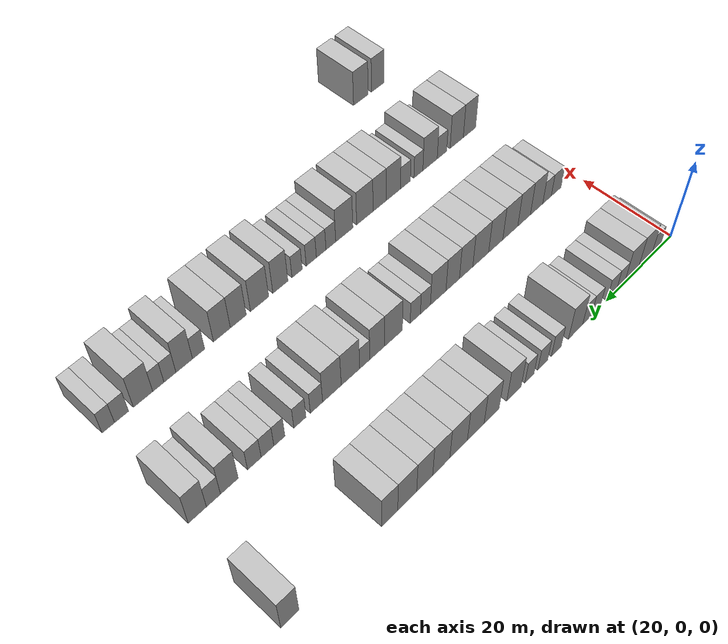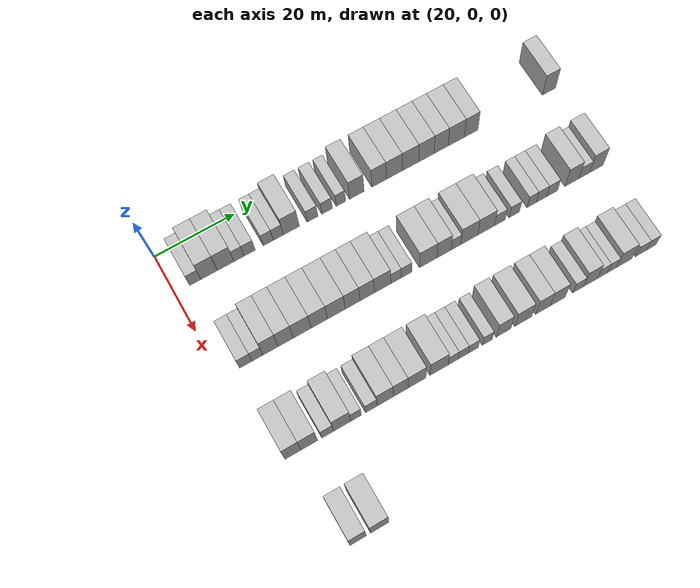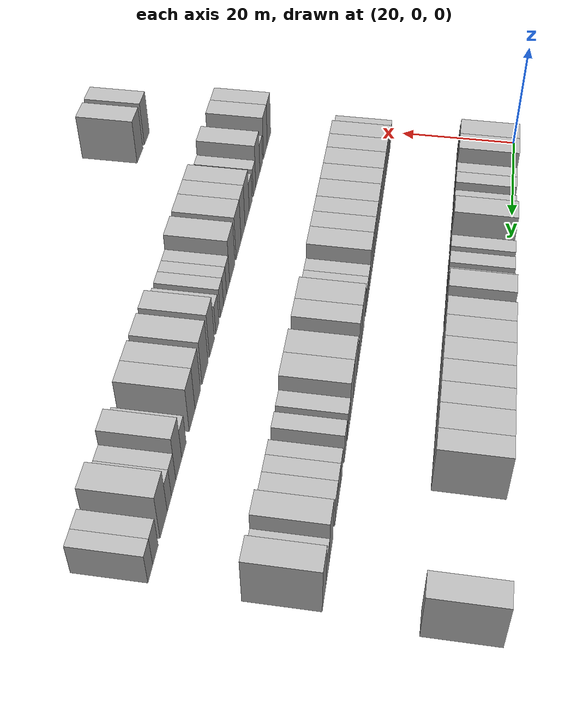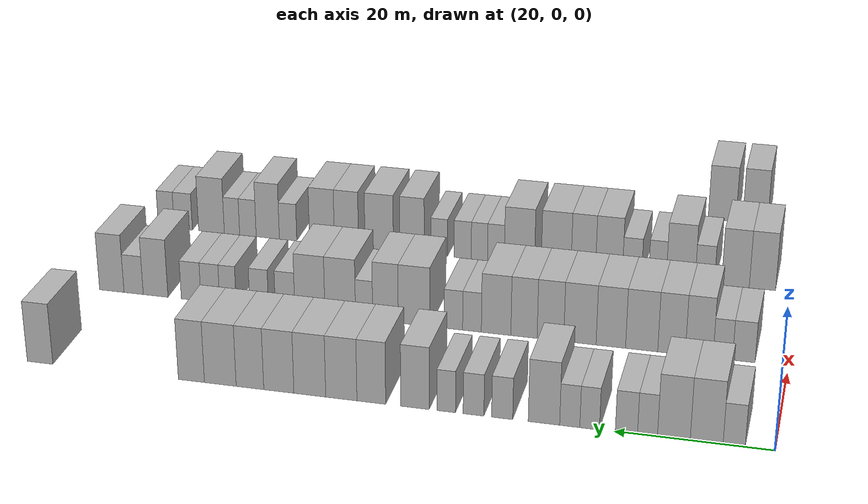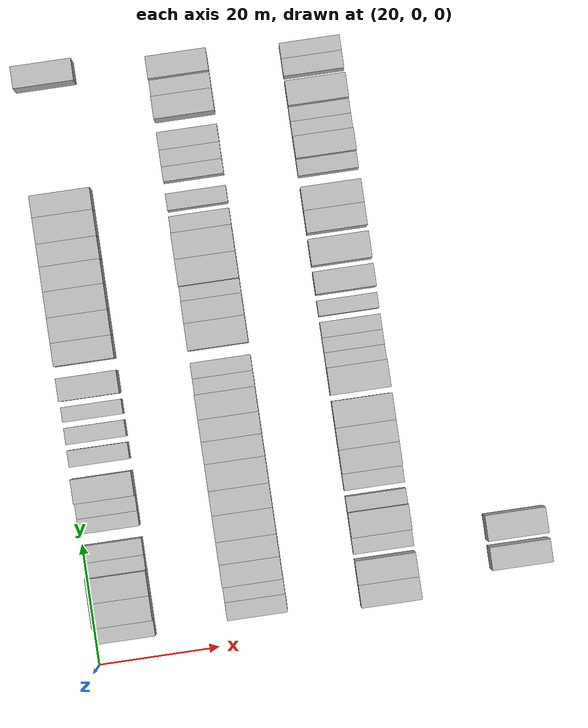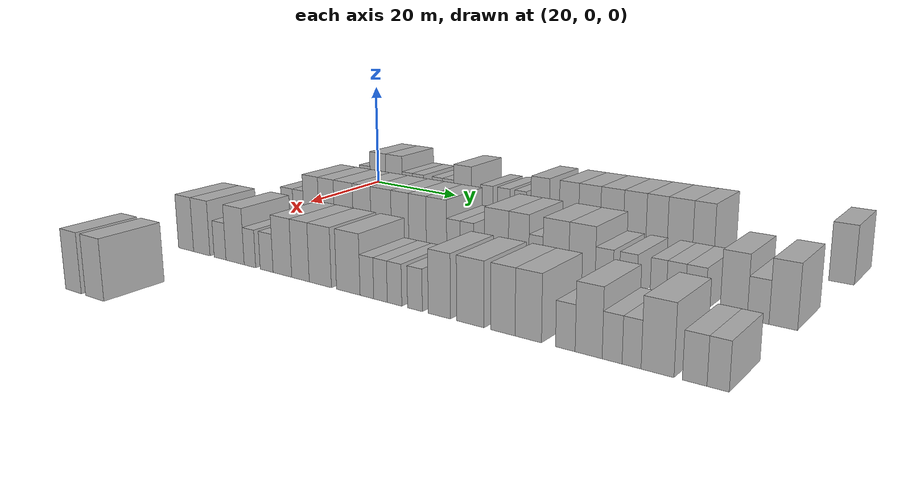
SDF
<sdf version="1.6">
 <world name="default">
  <model name="building_92">
   <static>1</static>
   <pose>25.0000 5.0454 0 0.000000 0.000000 0.000000</pose>
   <link name="link">
    <pose>0 0 3.00 0 0 0</pose>
    <collision name="collision"><geometry><box><size>10.0000 2.7323 6.0000</size></box></geometry></collision>
    <visual name="visual">
     <cast_shadows>0</cast_shadows>
     <geometry><box><size>10.0000 2.7323 6.0000</size></box></geometry>
     <material>
      <script>
       <uri>model://HANNAS_wall/materials/scripts</uri>
       <uri>model://HANNAS_wall/materials/textures</uri>
       <name>vrc/HANNAS_wall</name>
      </script>
     </material>
    </visual>
   </link>
  </model>
  <model name="building_93">
   <static>1</static>
   <pose>25.0000 8.4508 0 0.000000 0.000000 0.000000</pose>
   <link name="link">
    <pose>0 0 4.50 0 0 0</pose>
    <collision name="collision"><geometry><box><size>10.0000 4.0786 9.0000</size></box></geometry></collision>
    <visual name="visual">
     <cast_shadows>0</cast_shadows>
     <geometry><box><size>10.0000 4.0786 9.0000</size></box></geometry>
     <material>
      <script>
       <uri>model://HANNAS_wall/materials/scripts</uri>
       <uri>model://HANNAS_wall/materials/textures</uri>
       <name>vrc/HANNAS_wall</name>
      </script>
     </material>
    </visual>
   </link>
  </model>
  <model name="building_94">
   <static>1</static>
   <pose>25.0000 12.5341 0 0.000000 0.000000 0.000000</pose>
   <link name="link">
    <pose>0 0 4.50 0 0 0</pose>
    <collision name="collision"><geometry><box><size>10.0000 4.0880 9.0000</size></box></geometry></collision>
    <visual name="visual">
     <cast_shadows>0</cast_shadows>
     <geometry><box><size>10.0000 4.0880 9.0000</size></box></geometry>
     <material>
      <script>
       <uri>model://HANNAS_wall/materials/scripts</uri>
       <uri>model://HANNAS_wall/materials/textures</uri>
       <name>vrc/HANNAS_wall</name>
      </script>
     </material>
    </visual>
   </link>
  </model>
  <model name="building_95">
   <static>1</static>
   <pose>25.0000 15.8307 0 0.000000 0.000000 0.000000</pose>
   <link name="link">
    <pose>0 0 3.00 0 0 0</pose>
    <collision name="collision"><geometry><box><size>10.0000 2.5053 6.0000</size></box></geometry></collision>
    <visual name="visual">
     <cast_shadows>0</cast_shadows>
     <geometry><box><size>10.0000 2.5053 6.0000</size></box></geometry>
     <material>
      <script>
       <uri>model://HANNAS_wall/materials/scripts</uri>
       <uri>model://HANNAS_wall/materials/textures</uri>
       <name>vrc/HANNAS_wall</name>
      </script>
     </material>
    </visual>
   </link>
  </model>
  <model name="building_96">
   <static>1</static>
   <pose>25.0000 18.4816 0 0.000000 0.000000 0.000000</pose>
   <link name="link">
    <pose>0 0 3.00 0 0 0</pose>
    <collision name="collision"><geometry><box><size>10.0000 2.7967 6.0000</size></box></geometry></collision>
    <visual name="visual">
     <cast_shadows>0</cast_shadows>
     <geometry><box><size>10.0000 2.7967 6.0000</size></box></geometry>
     <material>
      <script>
       <uri>model://HANNAS_wall/materials/scripts</uri>
       <uri>model://HANNAS_wall/materials/textures</uri>
       <name>vrc/HANNAS_wall</name>
      </script>
     </material>
    </visual>
   </link>
  </model>
  <model name="building_97">
   <static>1</static>
   <pose>25.0000 23.1289 0 0.000000 0.000000 0.000000</pose>
   <link name="link">
    <pose>0 0 3.00 0 0 0</pose>
    <collision name="collision"><geometry><box><size>10.0000 2.4978 6.0000</size></box></geometry></collision>
    <visual name="visual">
     <cast_shadows>0</cast_shadows>
     <geometry><box><size>10.0000 2.4978 6.0000</size></box></geometry>
     <material>
      <script>
       <uri>model://HANNAS_wall/materials/scripts</uri>
       <uri>model://HANNAS_wall/materials/textures</uri>
       <name>vrc/HANNAS_wall</name>
      </script>
     </material>
    </visual>
   </link>
  </model>
  <model name="building_98">
   <static>1</static>
   <pose>25.0000 25.6640 0 0.000000 0.000000 0.000000</pose>
   <link name="link">
    <pose>0 0 3.00 0 0 0</pose>
    <collision name="collision"><geometry><box><size>10.0000 2.5723 6.0000</size></box></geometry></collision>
    <visual name="visual">
     <cast_shadows>0</cast_shadows>
     <geometry><box><size>10.0000 2.5723 6.0000</size></box></geometry>
     <material>
      <script>
       <uri>model://HANNAS_wall/materials/scripts</uri>
       <uri>model://HANNAS_wall/materials/textures</uri>
       <name>vrc/HANNAS_wall</name>
      </script>
     </material>
    </visual>
   </link>
  </model>
  <model name="building_99">
   <static>1</static>
   <pose>25.0000 28.9651 0 0.000000 0.000000 0.000000</pose>
   <link name="link">
    <pose>0 0 4.50 0 0 0</pose>
    <collision name="collision"><geometry><box><size>10.0000 4.0298 9.0000</size></box></geometry></collision>
    <visual name="visual">
     <cast_shadows>0</cast_shadows>
     <geometry><box><size>10.0000 4.0298 9.0000</size></box></geometry>
     <material>
      <script>
       <uri>model://HANNAS_wall/materials/scripts</uri>
       <uri>model://HANNAS_wall/materials/textures</uri>
       <name>vrc/HANNAS_wall</name>
      </script>
     </material>
    </visual>
   </link>
  </model>
  <model name="building_100">
   <static>1</static>
   <pose>25.0000 34.3432 0 0.000000 0.000000 0.000000</pose>
   <link name="link">
    <pose>0 0 3.00 0 0 0</pose>
    <collision name="collision"><geometry><box><size>10.0000 2.7264 6.0000</size></box></geometry></collision>
    <visual name="visual">
     <cast_shadows>0</cast_shadows>
     <geometry><box><size>10.0000 2.7264 6.0000</size></box></geometry>
     <material>
      <script>
       <uri>model://HANNAS_wall/materials/scripts</uri>
       <uri>model://HANNAS_wall/materials/textures</uri>
       <name>vrc/HANNAS_wall</name>
      </script>
     </material>
    </visual>
   </link>
  </model>
  <model name="building_101">
   <static>1</static>
   <pose>25.0000 38.0614 0 0.000000 0.000000 0.000000</pose>
   <link name="link">
    <pose>0 0 3.00 0 0 0</pose>
    <collision name="collision"><geometry><box><size>10.0000 2.7102 6.0000</size></box></geometry></collision>
    <visual name="visual">
     <cast_shadows>0</cast_shadows>
     <geometry><box><size>10.0000 2.7102 6.0000</size></box></geometry>
     <material>
      <script>
       <uri>model://HANNAS_wall/materials/scripts</uri>
       <uri>model://HANNAS_wall/materials/textures</uri>
       <name>vrc/HANNAS_wall</name>
      </script>
     </material>
    </visual>
   </link>
  </model>
  <model name="building_102">
   <static>1</static>
   <pose>25.0000 41.6313 0 0.000000 0.000000 0.000000</pose>
   <link name="link">
    <pose>0 0 3.00 0 0 0</pose>
    <collision name="collision"><geometry><box><size>10.0000 2.4295 6.0000</size></box></geometry></collision>
    <visual name="visual">
     <cast_shadows>0</cast_shadows>
     <geometry><box><size>10.0000 2.4295 6.0000</size></box></geometry>
     <material>
      <script>
       <uri>model://HANNAS_wall/materials/scripts</uri>
       <uri>model://HANNAS_wall/materials/textures</uri>
       <name>vrc/HANNAS_wall</name>
      </script>
     </material>
    </visual>
   </link>
  </model>
  <model name="building_103">
   <static>1</static>
   <pose>25.0000 45.7278 0 0.000000 0.000000 0.000000</pose>
   <link name="link">
    <pose>0 0 4.50 0 0 0</pose>
    <collision name="collision"><geometry><box><size>10.0000 3.7635 9.0000</size></box></geometry></collision>
    <visual name="visual">
     <cast_shadows>0</cast_shadows>
     <geometry><box><size>10.0000 3.7635 9.0000</size></box></geometry>
     <material>
      <script>
       <uri>model://HANNAS_wall/materials/scripts</uri>
       <uri>model://HANNAS_wall/materials/textures</uri>
       <name>vrc/HANNAS_wall</name>
      </script>
     </material>
    </visual>
   </link>
  </model>
  <model name="building_104">
   <static>1</static>
   <pose>25.0000 51.5184 0 0.000000 0.000000 0.000000</pose>
   <link name="link">
    <pose>0 0 4.50 0 0 0</pose>
    <collision name="collision"><geometry><box><size>10.0000 3.8178 9.0000</size></box></geometry></collision>
    <visual name="visual">
     <cast_shadows>0</cast_shadows>
     <geometry><box><size>10.0000 3.8178 9.0000</size></box></geometry>
     <material>
      <script>
       <uri>model://HANNAS_wall/materials/scripts</uri>
       <uri>model://HANNAS_wall/materials/textures</uri>
       <name>vrc/HANNAS_wall</name>
      </script>
     </material>
    </visual>
   </link>
  </model>
  <model name="building_105">
   <static>1</static>
   <pose>25.0000 55.5156 0 0.000000 0.000000 0.000000</pose>
   <link name="link">
    <pose>0 0 4.50 0 0 0</pose>
    <collision name="collision"><geometry><box><size>10.0000 4.1766 9.0000</size></box></geometry></collision>
    <visual name="visual">
     <cast_shadows>0</cast_shadows>
     <geometry><box><size>10.0000 4.1766 9.0000</size></box></geometry>
     <material>
      <script>
       <uri>model://HANNAS_wall/materials/scripts</uri>
       <uri>model://HANNAS_wall/materials/textures</uri>
       <name>vrc/HANNAS_wall</name>
      </script>
     </material>
    </visual>
   </link>
  </model>
  <model name="building_106">
   <static>1</static>
   <pose>25.0000 59.7483 0 0.000000 0.000000 0.000000</pose>
   <link name="link">
    <pose>0 0 4.50 0 0 0</pose>
    <collision name="collision"><geometry><box><size>10.0000 4.2888 9.0000</size></box></geometry></collision>
    <visual name="visual">
     <cast_shadows>0</cast_shadows>
     <geometry><box><size>10.0000 4.2888 9.0000</size></box></geometry>
     <material>
      <script>
       <uri>model://HANNAS_wall/materials/scripts</uri>
       <uri>model://HANNAS_wall/materials/textures</uri>
       <name>vrc/HANNAS_wall</name>
      </script>
     </material>
    </visual>
   </link>
  </model>
  <model name="building_107">
   <static>1</static>
   <pose>25.0000 63.9388 0 0.000000 0.000000 0.000000</pose>
   <link name="link">
    <pose>0 0 4.50 0 0 0</pose>
    <collision name="collision"><geometry><box><size>10.0000 4.0922 9.0000</size></box></geometry></collision>
    <visual name="visual">
     <cast_shadows>0</cast_shadows>
     <geometry><box><size>10.0000 4.0922 9.0000</size></box></geometry>
     <material>
      <script>
       <uri>model://HANNAS_wall/materials/scripts</uri>
       <uri>model://HANNAS_wall/materials/textures</uri>
       <name>vrc/HANNAS_wall</name>
      </script>
     </material>
    </visual>
   </link>
  </model>
  <model name="building_108">
   <static>1</static>
   <pose>25.0000 67.8675 0 0.000000 0.000000 0.000000</pose>
   <link name="link">
    <pose>0 0 4.50 0 0 0</pose>
    <collision name="collision"><geometry><box><size>10.0000 3.7653 9.0000</size></box></geometry></collision>
    <visual name="visual">
     <cast_shadows>0</cast_shadows>
     <geometry><box><size>10.0000 3.7653 9.0000</size></box></geometry>
     <material>
      <script>
       <uri>model://HANNAS_wall/materials/scripts</uri>
       <uri>model://HANNAS_wall/materials/textures</uri>
       <name>vrc/HANNAS_wall</name>
      </script>
     </material>
    </visual>
   </link>
  </model>
  <model name="building_109">
   <static>1</static>
   <pose>25.0000 71.9282 0 0.000000 0.000000 0.000000</pose>
   <link name="link">
    <pose>0 0 4.50 0 0 0</pose>
    <collision name="collision"><geometry><box><size>10.0000 4.3560 9.0000</size></box></geometry></collision>
    <visual name="visual">
     <cast_shadows>0</cast_shadows>
     <geometry><box><size>10.0000 4.3560 9.0000</size></box></geometry>
     <material>
      <script>
       <uri>model://HANNAS_wall/materials/scripts</uri>
       <uri>model://HANNAS_wall/materials/textures</uri>
       <name>vrc/HANNAS_wall</name>
      </script>
     </material>
    </visual>
   </link>
  </model>
  <model name="building_110">
   <static>1</static>
   <pose>25.0000 75.9111 0 0.000000 0.000000 0.000000</pose>
   <link name="link">
    <pose>0 0 4.50 0 0 0</pose>
    <collision name="collision"><geometry><box><size>10.0000 3.6099 9.0000</size></box></geometry></collision>
    <visual name="visual">
     <cast_shadows>0</cast_shadows>
     <geometry><box><size>10.0000 3.6099 9.0000</size></box></geometry>
     <material>
      <script>
       <uri>model://HANNAS_wall/materials/scripts</uri>
       <uri>model://HANNAS_wall/materials/textures</uri>
       <name>vrc/HANNAS_wall</name>
      </script>
     </material>
    </visual>
   </link>
  </model>
  <model name="building_111">
   <static>1</static>
   <pose>25.0000 97.1887 0 0.000000 0.000000 0.000000</pose>
   <link name="link">
    <pose>0 0 4.50 0 0 0</pose>
    <collision name="collision"><geometry><box><size>10.0000 3.6485 9.0000</size></box></geometry></collision>
    <visual name="visual">
     <cast_shadows>0</cast_shadows>
     <geometry><box><size>10.0000 3.6485 9.0000</size></box></geometry>
     <material>
      <script>
       <uri>model://HANNAS_wall/materials/scripts</uri>
       <uri>model://HANNAS_wall/materials/textures</uri>
       <name>vrc/HANNAS_wall</name>
      </script>
     </material>
    </visual>
   </link>
  </model>
  <model name="building_278">
   <static>1</static>
   <pose>47.0000 5.9174 0 0.000000 0.000000 0.000000</pose>
   <link name="link">
    <pose>0 0 3.00 0 0 0</pose>
    <collision name="collision"><geometry><box><size>10.0000 2.9882 6.0000</size></box></geometry></collision>
    <visual name="visual">
     <cast_shadows>0</cast_shadows>
     <geometry><box><size>10.0000 2.9882 6.0000</size></box></geometry>
     <material>
      <script>
       <uri>model://HANNAS_wall/materials/scripts</uri>
       <uri>model://HANNAS_wall/materials/textures</uri>
       <name>vrc/HANNAS_wall</name>
      </script>
     </material>
    </visual>
   </link>
  </model>
  <model name="building_279">
   <static>1</static>
   <pose>47.0000 8.7110 0 0.000000 0.000000 0.000000</pose>
   <link name="link">
    <pose>0 0 3.00 0 0 0</pose>
    <collision name="collision"><geometry><box><size>10.0000 2.5992 6.0000</size></box></geometry></collision>
    <visual name="visual">
     <cast_shadows>0</cast_shadows>
     <geometry><box><size>10.0000 2.5992 6.0000</size></box></geometry>
     <material>
      <script>
       <uri>model://HANNAS_wall/materials/scripts</uri>
       <uri>model://HANNAS_wall/materials/textures</uri>
       <name>vrc/HANNAS_wall</name>
      </script>
     </material>
    </visual>
   </link>
  </model>
  <model name="building_280">
   <static>1</static>
   <pose>47.0000 11.8727 0 0.000000 0.000000 0.000000</pose>
   <link name="link">
    <pose>0 0 4.50 0 0 0</pose>
    <collision name="collision"><geometry><box><size>10.0000 3.7240 9.0000</size></box></geometry></collision>
    <visual name="visual">
     <cast_shadows>0</cast_shadows>
     <geometry><box><size>10.0000 3.7240 9.0000</size></box></geometry>
     <material>
      <script>
       <uri>model://HANNAS_wall/materials/scripts</uri>
       <uri>model://HANNAS_wall/materials/textures</uri>
       <name>vrc/HANNAS_wall</name>
      </script>
     </material>
    </visual>
   </link>
  </model>
  <model name="building_281">
   <static>1</static>
   <pose>47.0000 15.5903 0 0.000000 0.000000 0.000000</pose>
   <link name="link">
    <pose>0 0 4.50 0 0 0</pose>
    <collision name="collision"><geometry><box><size>10.0000 3.7113 9.0000</size></box></geometry></collision>
    <visual name="visual">
     <cast_shadows>0</cast_shadows>
     <geometry><box><size>10.0000 3.7113 9.0000</size></box></geometry>
     <material>
      <script>
       <uri>model://HANNAS_wall/materials/scripts</uri>
       <uri>model://HANNAS_wall/materials/textures</uri>
       <name>vrc/HANNAS_wall</name>
      </script>
     </material>
    </visual>
   </link>
  </model>
  <model name="building_282">
   <static>1</static>
   <pose>47.0000 19.6282 0 0.000000 0.000000 0.000000</pose>
   <link name="link">
    <pose>0 0 4.50 0 0 0</pose>
    <collision name="collision"><geometry><box><size>10.0000 4.3644 9.0000</size></box></geometry></collision>
    <visual name="visual">
     <cast_shadows>0</cast_shadows>
     <geometry><box><size>10.0000 4.3644 9.0000</size></box></geometry>
     <material>
      <script>
       <uri>model://HANNAS_wall/materials/scripts</uri>
       <uri>model://HANNAS_wall/materials/textures</uri>
       <name>vrc/HANNAS_wall</name>
      </script>
     </material>
    </visual>
   </link>
  </model>
  <model name="building_283">
   <static>1</static>
   <pose>47.0000 23.8234 0 0.000000 0.000000 0.000000</pose>
   <link name="link">
    <pose>0 0 4.50 0 0 0</pose>
    <collision name="collision"><geometry><box><size>10.0000 4.0260 9.0000</size></box></geometry></collision>
    <visual name="visual">
     <cast_shadows>0</cast_shadows>
     <geometry><box><size>10.0000 4.0260 9.0000</size></box></geometry>
     <material>
      <script>
       <uri>model://HANNAS_wall/materials/scripts</uri>
       <uri>model://HANNAS_wall/materials/textures</uri>
       <name>vrc/HANNAS_wall</name>
      </script>
     </material>
    </visual>
   </link>
  </model>
  <model name="building_284">
   <static>1</static>
   <pose>47.0000 28.0574 0 0.000000 0.000000 0.000000</pose>
   <link name="link">
    <pose>0 0 4.50 0 0 0</pose>
    <collision name="collision"><geometry><box><size>10.0000 4.4421 9.0000</size></box></geometry></collision>
    <visual name="visual">
     <cast_shadows>0</cast_shadows>
     <geometry><box><size>10.0000 4.4421 9.0000</size></box></geometry>
     <material>
      <script>
       <uri>model://HANNAS_wall/materials/scripts</uri>
       <uri>model://HANNAS_wall/materials/textures</uri>
       <name>vrc/HANNAS_wall</name>
      </script>
     </material>
    </visual>
   </link>
  </model>
  <model name="building_285">
   <static>1</static>
   <pose>47.0000 32.1191 0 0.000000 0.000000 0.000000</pose>
   <link name="link">
    <pose>0 0 4.50 0 0 0</pose>
    <collision name="collision"><geometry><box><size>10.0000 3.6812 9.0000</size></box></geometry></collision>
    <visual name="visual">
     <cast_shadows>0</cast_shadows>
     <geometry><box><size>10.0000 3.6812 9.0000</size></box></geometry>
     <material>
      <script>
       <uri>model://HANNAS_wall/materials/scripts</uri>
       <uri>model://HANNAS_wall/materials/textures</uri>
       <name>vrc/HANNAS_wall</name>
      </script>
     </material>
    </visual>
   </link>
  </model>
  <model name="building_286">
   <static>1</static>
   <pose>47.0000 35.7826 0 0.000000 0.000000 0.000000</pose>
   <link name="link">
    <pose>0 0 4.50 0 0 0</pose>
    <collision name="collision"><geometry><box><size>10.0000 3.6458 9.0000</size></box></geometry></collision>
    <visual name="visual">
     <cast_shadows>0</cast_shadows>
     <geometry><box><size>10.0000 3.6458 9.0000</size></box></geometry>
     <material>
      <script>
       <uri>model://HANNAS_wall/materials/scripts</uri>
       <uri>model://HANNAS_wall/materials/textures</uri>
       <name>vrc/HANNAS_wall</name>
      </script>
     </material>
    </visual>
   </link>
  </model>
  <model name="building_287">
   <static>1</static>
   <pose>47.0000 39.6697 0 0.000000 0.000000 0.000000</pose>
   <link name="link">
    <pose>0 0 4.50 0 0 0</pose>
    <collision name="collision"><geometry><box><size>10.0000 4.1283 9.0000</size></box></geometry></collision>
    <visual name="visual">
     <cast_shadows>0</cast_shadows>
     <geometry><box><size>10.0000 4.1283 9.0000</size></box></geometry>
     <material>
      <script>
       <uri>model://HANNAS_wall/materials/scripts</uri>
       <uri>model://HANNAS_wall/materials/textures</uri>
       <name>vrc/HANNAS_wall</name>
      </script>
     </material>
    </visual>
   </link>
  </model>
  <model name="building_288">
   <static>1</static>
   <pose>47.0000 43.0494 0 0.000000 0.000000 0.000000</pose>
   <link name="link">
    <pose>0 0 3.00 0 0 0</pose>
    <collision name="collision"><geometry><box><size>10.0000 2.6312 6.0000</size></box></geometry></collision>
    <visual name="visual">
     <cast_shadows>0</cast_shadows>
     <geometry><box><size>10.0000 2.6312 6.0000</size></box></geometry>
     <material>
      <script>
       <uri>model://HANNAS_wall/materials/scripts</uri>
       <uri>model://HANNAS_wall/materials/textures</uri>
       <name>vrc/HANNAS_wall</name>
      </script>
     </material>
    </visual>
   </link>
  </model>
  <model name="building_289">
   <static>1</static>
   <pose>47.0000 45.6836 0 0.000000 0.000000 0.000000</pose>
   <link name="link">
    <pose>0 0 3.00 0 0 0</pose>
    <collision name="collision"><geometry><box><size>10.0000 2.6373 6.0000</size></box></geometry></collision>
    <visual name="visual">
     <cast_shadows>0</cast_shadows>
     <geometry><box><size>10.0000 2.6373 6.0000</size></box></geometry>
     <material>
      <script>
       <uri>model://HANNAS_wall/materials/scripts</uri>
       <uri>model://HANNAS_wall/materials/textures</uri>
       <name>vrc/HANNAS_wall</name>
      </script>
     </material>
    </visual>
   </link>
  </model>
  <model name="building_290">
   <static>1</static>
   <pose>47.0000 51.2423 0 0.000000 0.000000 0.000000</pose>
   <link name="link">
    <pose>0 0 4.50 0 0 0</pose>
    <collision name="collision"><geometry><box><size>10.0000 4.4801 9.0000</size></box></geometry></collision>
    <visual name="visual">
     <cast_shadows>0</cast_shadows>
     <geometry><box><size>10.0000 4.4801 9.0000</size></box></geometry>
     <material>
      <script>
       <uri>model://HANNAS_wall/materials/scripts</uri>
       <uri>model://HANNAS_wall/materials/textures</uri>
       <name>vrc/HANNAS_wall</name>
      </script>
     </material>
    </visual>
   </link>
  </model>
  <model name="building_291">
   <static>1</static>
   <pose>47.0000 55.3150 0 0.000000 0.000000 0.000000</pose>
   <link name="link">
    <pose>0 0 4.50 0 0 0</pose>
    <collision name="collision"><geometry><box><size>10.0000 3.6653 9.0000</size></box></geometry></collision>
    <visual name="visual">
     <cast_shadows>0</cast_shadows>
     <geometry><box><size>10.0000 3.6653 9.0000</size></box></geometry>
     <material>
      <script>
       <uri>model://HANNAS_wall/materials/scripts</uri>
       <uri>model://HANNAS_wall/materials/textures</uri>
       <name>vrc/HANNAS_wall</name>
      </script>
     </material>
    </visual>
   </link>
  </model>
  <model name="building_292">
   <static>1</static>
   <pose>47.0000 58.3792 0 0.000000 0.000000 0.000000</pose>
   <link name="link">
    <pose>0 0 3.00 0 0 0</pose>
    <collision name="collision"><geometry><box><size>10.0000 2.4630 6.0000</size></box></geometry></collision>
    <visual name="visual">
     <cast_shadows>0</cast_shadows>
     <geometry><box><size>10.0000 2.4630 6.0000</size></box></geometry>
     <material>
      <script>
       <uri>model://HANNAS_wall/materials/scripts</uri>
       <uri>model://HANNAS_wall/materials/textures</uri>
       <name>vrc/HANNAS_wall</name>
      </script>
     </material>
    </visual>
   </link>
  </model>
  <model name="building_293">
   <static>1</static>
   <pose>47.0000 61.8225 0 0.000000 0.000000 0.000000</pose>
   <link name="link">
    <pose>0 0 4.50 0 0 0</pose>
    <collision name="collision"><geometry><box><size>10.0000 4.4238 9.0000</size></box></geometry></collision>
    <visual name="visual">
     <cast_shadows>0</cast_shadows>
     <geometry><box><size>10.0000 4.4238 9.0000</size></box></geometry>
     <material>
      <script>
       <uri>model://HANNAS_wall/materials/scripts</uri>
       <uri>model://HANNAS_wall/materials/textures</uri>
       <name>vrc/HANNAS_wall</name>
      </script>
     </material>
    </visual>
   </link>
  </model>
  <model name="building_294">
   <static>1</static>
   <pose>47.0000 66.2221 0 0.000000 0.000000 0.000000</pose>
   <link name="link">
    <pose>0 0 4.50 0 0 0</pose>
    <collision name="collision"><geometry><box><size>10.0000 4.3753 9.0000</size></box></geometry></collision>
    <visual name="visual">
     <cast_shadows>0</cast_shadows>
     <geometry><box><size>10.0000 4.3753 9.0000</size></box></geometry>
     <material>
      <script>
       <uri>model://HANNAS_wall/materials/scripts</uri>
       <uri>model://HANNAS_wall/materials/textures</uri>
       <name>vrc/HANNAS_wall</name>
      </script>
     </material>
    </visual>
   </link>
  </model>
  <model name="building_295">
   <static>1</static>
   <pose>47.0000 69.8311 0 0.000000 0.000000 0.000000</pose>
   <link name="link">
    <pose>0 0 3.00 0 0 0</pose>
    <collision name="collision"><geometry><box><size>10.0000 2.8427 6.0000</size></box></geometry></collision>
    <visual name="visual">
     <cast_shadows>0</cast_shadows>
     <geometry><box><size>10.0000 2.8427 6.0000</size></box></geometry>
     <material>
      <script>
       <uri>model://HANNAS_wall/materials/scripts</uri>
       <uri>model://HANNAS_wall/materials/textures</uri>
       <name>vrc/HANNAS_wall</name>
      </script>
     </material>
    </visual>
   </link>
  </model>
  <model name="building_296">
   <static>1</static>
   <pose>47.0000 73.6313 0 0.000000 0.000000 0.000000</pose>
   <link name="link">
    <pose>0 0 3.00 0 0 0</pose>
    <collision name="collision"><geometry><box><size>10.0000 2.7577 6.0000</size></box></geometry></collision>
    <visual name="visual">
     <cast_shadows>0</cast_shadows>
     <geometry><box><size>10.0000 2.7577 6.0000</size></box></geometry>
     <material>
      <script>
       <uri>model://HANNAS_wall/materials/scripts</uri>
       <uri>model://HANNAS_wall/materials/textures</uri>
       <name>vrc/HANNAS_wall</name>
      </script>
     </material>
    </visual>
   </link>
  </model>
  <model name="building_297">
   <static>1</static>
   <pose>47.0000 78.2340 0 0.000000 0.000000 0.000000</pose>
   <link name="link">
    <pose>0 0 3.00 0 0 0</pose>
    <collision name="collision"><geometry><box><size>10.0000 2.4476 6.0000</size></box></geometry></collision>
    <visual name="visual">
     <cast_shadows>0</cast_shadows>
     <geometry><box><size>10.0000 2.4476 6.0000</size></box></geometry>
     <material>
      <script>
       <uri>model://HANNAS_wall/materials/scripts</uri>
       <uri>model://HANNAS_wall/materials/textures</uri>
       <name>vrc/HANNAS_wall</name>
      </script>
     </material>
    </visual>
   </link>
  </model>
  <model name="building_298">
   <static>1</static>
   <pose>47.0000 80.8464 0 0.000000 0.000000 0.000000</pose>
   <link name="link">
    <pose>0 0 3.00 0 0 0</pose>
    <collision name="collision"><geometry><box><size>10.0000 2.7772 6.0000</size></box></geometry></collision>
    <visual name="visual">
     <cast_shadows>0</cast_shadows>
     <geometry><box><size>10.0000 2.7772 6.0000</size></box></geometry>
     <material>
      <script>
       <uri>model://HANNAS_wall/materials/scripts</uri>
       <uri>model://HANNAS_wall/materials/textures</uri>
       <name>vrc/HANNAS_wall</name>
      </script>
     </material>
    </visual>
   </link>
  </model>
  <model name="building_299">
   <static>1</static>
   <pose>47.0000 83.7048 0 0.000000 0.000000 0.000000</pose>
   <link name="link">
    <pose>0 0 3.00 0 0 0</pose>
    <collision name="collision"><geometry><box><size>10.0000 2.9396 6.0000</size></box></geometry></collision>
    <visual name="visual">
     <cast_shadows>0</cast_shadows>
     <geometry><box><size>10.0000 2.9396 6.0000</size></box></geometry>
     <material>
      <script>
       <uri>model://HANNAS_wall/materials/scripts</uri>
       <uri>model://HANNAS_wall/materials/textures</uri>
       <name>vrc/HANNAS_wall</name>
      </script>
     </material>
    </visual>
   </link>
  </model>
  <model name="building_300">
   <static>1</static>
   <pose>47.0000 89.0369 0 0.000000 0.000000 0.000000</pose>
   <link name="link">
    <pose>0 0 4.50 0 0 0</pose>
    <collision name="collision"><geometry><box><size>10.0000 3.7245 9.0000</size></box></geometry></collision>
    <visual name="visual">
     <cast_shadows>0</cast_shadows>
     <geometry><box><size>10.0000 3.7245 9.0000</size></box></geometry>
     <material>
      <script>
       <uri>model://HANNAS_wall/materials/scripts</uri>
       <uri>model://HANNAS_wall/materials/textures</uri>
       <name>vrc/HANNAS_wall</name>
      </script>
     </material>
    </visual>
   </link>
  </model>
  <model name="building_301">
   <static>1</static>
   <pose>47.0000 92.3514 0 0.000000 0.000000 0.000000</pose>
   <link name="link">
    <pose>0 0 3.00 0 0 0</pose>
    <collision name="collision"><geometry><box><size>10.0000 2.9047 6.0000</size></box></geometry></collision>
    <visual name="visual">
     <cast_shadows>0</cast_shadows>
     <geometry><box><size>10.0000 2.9047 6.0000</size></box></geometry>
     <material>
      <script>
       <uri>model://HANNAS_wall/materials/scripts</uri>
       <uri>model://HANNAS_wall/materials/textures</uri>
       <name>vrc/HANNAS_wall</name>
      </script>
     </material>
    </visual>
   </link>
  </model>
  <model name="building_302">
   <static>1</static>
   <pose>47.0000 95.6539 0 0.000000 0.000000 0.000000</pose>
   <link name="link">
    <pose>0 0 4.50 0 0 0</pose>
    <collision name="collision"><geometry><box><size>10.0000 3.7003 9.0000</size></box></geometry></collision>
    <visual name="visual">
     <cast_shadows>0</cast_shadows>
     <geometry><box><size>10.0000 3.7003 9.0000</size></box></geometry>
     <material>
      <script>
       <uri>model://HANNAS_wall/materials/scripts</uri>
       <uri>model://HANNAS_wall/materials/textures</uri>
       <name>vrc/HANNAS_wall</name>
      </script>
     </material>
    </visual>
   </link>
  </model>
  <model name="building_470">
   <static>1</static>
   <pose>69.0000 5.3311 0 0.000000 0.000000 0.000000</pose>
   <link name="link">
    <pose>0 0 4.50 0 0 0</pose>
    <collision name="collision"><geometry><box><size>10.0000 3.7451 9.0000</size></box></geometry></collision>
    <visual name="visual">
     <cast_shadows>0</cast_shadows>
     <geometry><box><size>10.0000 3.7451 9.0000</size></box></geometry>
     <material>
      <script>
       <uri>model://HANNAS_wall/materials/scripts</uri>
       <uri>model://HANNAS_wall/materials/textures</uri>
       <name>vrc/HANNAS_wall</name>
      </script>
     </material>
    </visual>
   </link>
  </model>
  <model name="building_471">
   <static>1</static>
   <pose>69.0000 9.1873 0 0.000000 0.000000 0.000000</pose>
   <link name="link">
    <pose>0 0 4.50 0 0 0</pose>
    <collision name="collision"><geometry><box><size>10.0000 3.9674 9.0000</size></box></geometry></collision>
    <visual name="visual">
     <cast_shadows>0</cast_shadows>
     <geometry><box><size>10.0000 3.9674 9.0000</size></box></geometry>
     <material>
      <script>
       <uri>model://HANNAS_wall/materials/scripts</uri>
       <uri>model://HANNAS_wall/materials/textures</uri>
       <name>vrc/HANNAS_wall</name>
      </script>
     </material>
    </visual>
   </link>
  </model>
  <model name="building_472">
   <static>1</static>
   <pose>69.0000 13.5609 0 0.000000 0.000000 0.000000</pose>
   <link name="link">
    <pose>0 0 3.00 0 0 0</pose>
    <collision name="collision"><geometry><box><size>10.0000 2.7798 6.0000</size></box></geometry></collision>
    <visual name="visual">
     <cast_shadows>0</cast_shadows>
     <geometry><box><size>10.0000 2.7798 6.0000</size></box></geometry>
     <material>
      <script>
       <uri>model://HANNAS_wall/materials/scripts</uri>
       <uri>model://HANNAS_wall/materials/textures</uri>
       <name>vrc/HANNAS_wall</name>
      </script>
     </material>
    </visual>
   </link>
  </model>
  <model name="building_473">
   <static>1</static>
   <pose>69.0000 17.0372 0 0.000000 0.000000 0.000000</pose>
   <link name="link">
    <pose>0 0 4.50 0 0 0</pose>
    <collision name="collision"><geometry><box><size>10.0000 4.1728 9.0000</size></box></geometry></collision>
    <visual name="visual">
     <cast_shadows>0</cast_shadows>
     <geometry><box><size>10.0000 4.1728 9.0000</size></box></geometry>
     <material>
      <script>
       <uri>model://HANNAS_wall/materials/scripts</uri>
       <uri>model://HANNAS_wall/materials/textures</uri>
       <name>vrc/HANNAS_wall</name>
      </script>
     </material>
    </visual>
   </link>
  </model>
  <model name="building_474">
   <static>1</static>
   <pose>69.0000 20.4074 0 0.000000 0.000000 0.000000</pose>
   <link name="link">
    <pose>0 0 3.00 0 0 0</pose>
    <collision name="collision"><geometry><box><size>10.0000 2.5675 6.0000</size></box></geometry></collision>
    <visual name="visual">
     <cast_shadows>0</cast_shadows>
     <geometry><box><size>10.0000 2.5675 6.0000</size></box></geometry>
     <material>
      <script>
       <uri>model://HANNAS_wall/materials/scripts</uri>
       <uri>model://HANNAS_wall/materials/textures</uri>
       <name>vrc/HANNAS_wall</name>
      </script>
     </material>
    </visual>
   </link>
  </model>
  <model name="building_475">
   <static>1</static>
   <pose>69.0000 24.0943 0 0.000000 0.000000 0.000000</pose>
   <link name="link">
    <pose>0 0 3.00 0 0 0</pose>
    <collision name="collision"><geometry><box><size>10.0000 2.8063 6.0000</size></box></geometry></collision>
    <visual name="visual">
     <cast_shadows>0</cast_shadows>
     <geometry><box><size>10.0000 2.8063 6.0000</size></box></geometry>
     <material>
      <script>
       <uri>model://HANNAS_wall/materials/scripts</uri>
       <uri>model://HANNAS_wall/materials/textures</uri>
       <name>vrc/HANNAS_wall</name>
      </script>
     </material>
    </visual>
   </link>
  </model>
  <model name="building_476">
   <static>1</static>
   <pose>69.0000 27.4718 0 0.000000 0.000000 0.000000</pose>
   <link name="link">
    <pose>0 0 4.50 0 0 0</pose>
    <collision name="collision"><geometry><box><size>10.0000 3.9488 9.0000</size></box></geometry></collision>
    <visual name="visual">
     <cast_shadows>0</cast_shadows>
     <geometry><box><size>10.0000 3.9488 9.0000</size></box></geometry>
     <material>
      <script>
       <uri>model://HANNAS_wall/materials/scripts</uri>
       <uri>model://HANNAS_wall/materials/textures</uri>
       <name>vrc/HANNAS_wall</name>
      </script>
     </material>
    </visual>
   </link>
  </model>
  <model name="building_477">
   <static>1</static>
   <pose>69.0000 31.2479 0 0.000000 0.000000 0.000000</pose>
   <link name="link">
    <pose>0 0 4.50 0 0 0</pose>
    <collision name="collision"><geometry><box><size>10.0000 3.6034 9.0000</size></box></geometry></collision>
    <visual name="visual">
     <cast_shadows>0</cast_shadows>
     <geometry><box><size>10.0000 3.6034 9.0000</size></box></geometry>
     <material>
      <script>
       <uri>model://HANNAS_wall/materials/scripts</uri>
       <uri>model://HANNAS_wall/materials/textures</uri>
       <name>vrc/HANNAS_wall</name>
      </script>
     </material>
    </visual>
   </link>
  </model>
  <model name="building_478">
   <static>1</static>
   <pose>69.0000 35.2572 0 0.000000 0.000000 0.000000</pose>
   <link name="link">
    <pose>0 0 4.50 0 0 0</pose>
    <collision name="collision"><geometry><box><size>10.0000 4.4152 9.0000</size></box></geometry></collision>
    <visual name="visual">
     <cast_shadows>0</cast_shadows>
     <geometry><box><size>10.0000 4.4152 9.0000</size></box></geometry>
     <material>
      <script>
       <uri>model://HANNAS_wall/materials/scripts</uri>
       <uri>model://HANNAS_wall/materials/textures</uri>
       <name>vrc/HANNAS_wall</name>
      </script>
     </material>
    </visual>
   </link>
  </model>
  <model name="building_479">
   <static>1</static>
   <pose>69.0000 40.7146 0 0.000000 0.000000 0.000000</pose>
   <link name="link">
    <pose>0 0 4.50 0 0 0</pose>
    <collision name="collision"><geometry><box><size>10.0000 4.4996 9.0000</size></box></geometry></collision>
    <visual name="visual">
     <cast_shadows>0</cast_shadows>
     <geometry><box><size>10.0000 4.4996 9.0000</size></box></geometry>
     <material>
      <script>
       <uri>model://HANNAS_wall/materials/scripts</uri>
       <uri>model://HANNAS_wall/materials/textures</uri>
       <name>vrc/HANNAS_wall</name>
      </script>
     </material>
    </visual>
   </link>
  </model>
  <model name="building_480">
   <static>1</static>
   <pose>69.0000 44.2272 0 0.000000 0.000000 0.000000</pose>
   <link name="link">
    <pose>0 0 3.00 0 0 0</pose>
    <collision name="collision"><geometry><box><size>10.0000 2.5256 6.0000</size></box></geometry></collision>
    <visual name="visual">
     <cast_shadows>0</cast_shadows>
     <geometry><box><size>10.0000 2.5256 6.0000</size></box></geometry>
     <material>
      <script>
       <uri>model://HANNAS_wall/materials/scripts</uri>
       <uri>model://HANNAS_wall/materials/textures</uri>
       <name>vrc/HANNAS_wall</name>
      </script>
     </material>
    </visual>
   </link>
  </model>
  <model name="building_481">
   <static>1</static>
   <pose>69.0000 46.7199 0 0.000000 0.000000 0.000000</pose>
   <link name="link">
    <pose>0 0 3.00 0 0 0</pose>
    <collision name="collision"><geometry><box><size>10.0000 2.4599 6.0000</size></box></geometry></collision>
    <visual name="visual">
     <cast_shadows>0</cast_shadows>
     <geometry><box><size>10.0000 2.4599 6.0000</size></box></geometry>
     <material>
      <script>
       <uri>model://HANNAS_wall/materials/scripts</uri>
       <uri>model://HANNAS_wall/materials/textures</uri>
       <name>vrc/HANNAS_wall</name>
      </script>
     </material>
    </visual>
   </link>
  </model>
  <model name="building_482">
   <static>1</static>
   <pose>69.0000 49.2386 0 0.000000 0.000000 0.000000</pose>
   <link name="link">
    <pose>0 0 3.00 0 0 0</pose>
    <collision name="collision"><geometry><box><size>10.0000 2.5776 6.0000</size></box></geometry></collision>
    <visual name="visual">
     <cast_shadows>0</cast_shadows>
     <geometry><box><size>10.0000 2.5776 6.0000</size></box></geometry>
     <material>
      <script>
       <uri>model://HANNAS_wall/materials/scripts</uri>
       <uri>model://HANNAS_wall/materials/textures</uri>
       <name>vrc/HANNAS_wall</name>
      </script>
     </material>
    </visual>
   </link>
  </model>
  <model name="building_483">
   <static>1</static>
   <pose>69.0000 52.8045 0 0.000000 0.000000 0.000000</pose>
   <link name="link">
    <pose>0 0 3.00 0 0 0</pose>
    <collision name="collision"><geometry><box><size>10.0000 2.5542 6.0000</size></box></geometry></collision>
    <visual name="visual">
     <cast_shadows>0</cast_shadows>
     <geometry><box><size>10.0000 2.5542 6.0000</size></box></geometry>
     <material>
      <script>
       <uri>model://HANNAS_wall/materials/scripts</uri>
       <uri>model://HANNAS_wall/materials/textures</uri>
       <name>vrc/HANNAS_wall</name>
      </script>
     </material>
    </visual>
   </link>
  </model>
  <model name="building_484">
   <static>1</static>
   <pose>69.0000 56.9305 0 0.000000 0.000000 0.000000</pose>
   <link name="link">
    <pose>0 0 4.50 0 0 0</pose>
    <collision name="collision"><geometry><box><size>10.0000 3.6977 9.0000</size></box></geometry></collision>
    <visual name="visual">
     <cast_shadows>0</cast_shadows>
     <geometry><box><size>10.0000 3.6977 9.0000</size></box></geometry>
     <material>
      <script>
       <uri>model://HANNAS_wall/materials/scripts</uri>
       <uri>model://HANNAS_wall/materials/textures</uri>
       <name>vrc/HANNAS_wall</name>
      </script>
     </material>
    </visual>
   </link>
  </model>
  <model name="building_485">
   <static>1</static>
   <pose>69.0000 61.9614 0 0.000000 0.000000 0.000000</pose>
   <link name="link">
    <pose>0 0 4.50 0 0 0</pose>
    <collision name="collision"><geometry><box><size>10.0000 4.3640 9.0000</size></box></geometry></collision>
    <visual name="visual">
     <cast_shadows>0</cast_shadows>
     <geometry><box><size>10.0000 4.3640 9.0000</size></box></geometry>
     <material>
      <script>
       <uri>model://HANNAS_wall/materials/scripts</uri>
       <uri>model://HANNAS_wall/materials/textures</uri>
       <name>vrc/HANNAS_wall</name>
      </script>
     </material>
    </visual>
   </link>
  </model>
  <model name="building_486">
   <static>1</static>
   <pose>69.0000 67.0095 0 0.000000 0.000000 0.000000</pose>
   <link name="link">
    <pose>0 0 4.50 0 0 0</pose>
    <collision name="collision"><geometry><box><size>10.0000 3.7323 9.0000</size></box></geometry></collision>
    <visual name="visual">
     <cast_shadows>0</cast_shadows>
     <geometry><box><size>10.0000 3.7323 9.0000</size></box></geometry>
     <material>
      <script>
       <uri>model://HANNAS_wall/materials/scripts</uri>
       <uri>model://HANNAS_wall/materials/textures</uri>
       <name>vrc/HANNAS_wall</name>
      </script>
     </material>
    </visual>
   </link>
  </model>
  <model name="building_487">
   <static>1</static>
   <pose>69.0000 70.8110 0 0.000000 0.000000 0.000000</pose>
   <link name="link">
    <pose>0 0 4.50 0 0 0</pose>
    <collision name="collision"><geometry><box><size>10.0000 3.8706 9.0000</size></box></geometry></collision>
    <visual name="visual">
     <cast_shadows>0</cast_shadows>
     <geometry><box><size>10.0000 3.8706 9.0000</size></box></geometry>
     <material>
      <script>
       <uri>model://HANNAS_wall/materials/scripts</uri>
       <uri>model://HANNAS_wall/materials/textures</uri>
       <name>vrc/HANNAS_wall</name>
      </script>
     </material>
    </visual>
   </link>
  </model>
  <model name="building_488">
   <static>1</static>
   <pose>69.0000 76.1122 0 0.000000 0.000000 0.000000</pose>
   <link name="link">
    <pose>0 0 3.00 0 0 0</pose>
    <collision name="collision"><geometry><box><size>10.0000 2.7319 6.0000</size></box></geometry></collision>
    <visual name="visual">
     <cast_shadows>0</cast_shadows>
     <geometry><box><size>10.0000 2.7319 6.0000</size></box></geometry>
     <material>
      <script>
       <uri>model://HANNAS_wall/materials/scripts</uri>
       <uri>model://HANNAS_wall/materials/textures</uri>
       <name>vrc/HANNAS_wall</name>
      </script>
     </material>
    </visual>
   </link>
  </model>
  <model name="building_489">
   <static>1</static>
   <pose>69.0000 79.3053 0 0.000000 0.000000 0.000000</pose>
   <link name="link">
    <pose>0 0 4.50 0 0 0</pose>
    <collision name="collision"><geometry><box><size>10.0000 3.6542 9.0000</size></box></geometry></collision>
    <visual name="visual">
     <cast_shadows>0</cast_shadows>
     <geometry><box><size>10.0000 3.6542 9.0000</size></box></geometry>
     <material>
      <script>
       <uri>model://HANNAS_wall/materials/scripts</uri>
       <uri>model://HANNAS_wall/materials/textures</uri>
       <name>vrc/HANNAS_wall</name>
      </script>
     </material>
    </visual>
   </link>
  </model>
  <model name="building_490">
   <static>1</static>
   <pose>69.0000 82.4386 0 0.000000 0.000000 0.000000</pose>
   <link name="link">
    <pose>0 0 3.00 0 0 0</pose>
    <collision name="collision"><geometry><box><size>10.0000 2.6122 6.0000</size></box></geometry></collision>
    <visual name="visual">
     <cast_shadows>0</cast_shadows>
     <geometry><box><size>10.0000 2.6122 6.0000</size></box></geometry>
     <material>
      <script>
       <uri>model://HANNAS_wall/materials/scripts</uri>
       <uri>model://HANNAS_wall/materials/textures</uri>
       <name>vrc/HANNAS_wall</name>
      </script>
     </material>
    </visual>
   </link>
  </model>
  <model name="building_491">
   <static>1</static>
   <pose>69.0000 84.9608 0 0.000000 0.000000 0.000000</pose>
   <link name="link">
    <pose>0 0 3.00 0 0 0</pose>
    <collision name="collision"><geometry><box><size>10.0000 2.4322 6.0000</size></box></geometry></collision>
    <visual name="visual">
     <cast_shadows>0</cast_shadows>
     <geometry><box><size>10.0000 2.4322 6.0000</size></box></geometry>
     <material>
      <script>
       <uri>model://HANNAS_wall/materials/scripts</uri>
       <uri>model://HANNAS_wall/materials/textures</uri>
       <name>vrc/HANNAS_wall</name>
      </script>
     </material>
    </visual>
   </link>
  </model>
  <model name="building_492">
   <static>1</static>
   <pose>69.0000 88.2209 0 0.000000 0.000000 0.000000</pose>
   <link name="link">
    <pose>0 0 4.50 0 0 0</pose>
    <collision name="collision"><geometry><box><size>10.0000 4.0881 9.0000</size></box></geometry></collision>
    <visual name="visual">
     <cast_shadows>0</cast_shadows>
     <geometry><box><size>10.0000 4.0881 9.0000</size></box></geometry>
     <material>
      <script>
       <uri>model://HANNAS_wall/materials/scripts</uri>
       <uri>model://HANNAS_wall/materials/textures</uri>
       <name>vrc/HANNAS_wall</name>
      </script>
     </material>
    </visual>
   </link>
  </model>
  <model name="building_493">
   <static>1</static>
   <pose>69.0000 92.7236 0 0.000000 0.000000 0.000000</pose>
   <link name="link">
    <pose>0 0 3.00 0 0 0</pose>
    <collision name="collision"><geometry><box><size>10.0000 2.9173 6.0000</size></box></geometry></collision>
    <visual name="visual">
     <cast_shadows>0</cast_shadows>
     <geometry><box><size>10.0000 2.9173 6.0000</size></box></geometry>
     <material>
      <script>
       <uri>model://HANNAS_wall/materials/scripts</uri>
       <uri>model://HANNAS_wall/materials/textures</uri>
       <name>vrc/HANNAS_wall</name>
      </script>
     </material>
    </visual>
   </link>
  </model>
  <model name="building_494">
   <static>1</static>
   <pose>69.0000 95.4641 0 0.000000 0.000000 0.000000</pose>
   <link name="link">
    <pose>0 0 3.00 0 0 0</pose>
    <collision name="collision"><geometry><box><size>10.0000 2.5635 6.0000</size></box></geometry></collision>
    <visual name="visual">
     <cast_shadows>0</cast_shadows>
     <geometry><box><size>10.0000 2.5635 6.0000</size></box></geometry>
     <material>
      <script>
       <uri>model://HANNAS_wall/materials/scripts</uri>
       <uri>model://HANNAS_wall/materials/textures</uri>
       <name>vrc/HANNAS_wall</name>
      </script>
     </material>
    </visual>
   </link>
  </model>
  <model name="building_665">
   <static>1</static>
   <pose>91.0000 8.3285 0 0.000000 0.000000 0.000000</pose>
   <link name="link">
    <pose>0 0 4.50 0 0 0</pose>
    <collision name="collision"><geometry><box><size>10.0000 3.7940 9.0000</size></box></geometry></collision>
    <visual name="visual">
     <cast_shadows>0</cast_shadows>
     <geometry><box><size>10.0000 3.7940 9.0000</size></box></geometry>
     <material>
      <script>
       <uri>model://HANNAS_wall/materials/scripts</uri>
       <uri>model://HANNAS_wall/materials/textures</uri>
       <name>vrc/HANNAS_wall</name>
      </script>
     </material>
    </visual>
   </link>
  </model>
  <model name="building_666">
   <static>1</static>
   <pose>91.0000 13.3552 0 0.000000 0.000000 0.000000</pose>
   <link name="link">
    <pose>0 0 4.50 0 0 0</pose>
    <collision name="collision"><geometry><box><size>10.0000 4.2595 9.0000</size></box></geometry></collision>
    <visual name="visual">
     <cast_shadows>0</cast_shadows>
     <geometry><box><size>10.0000 4.2595 9.0000</size></box></geometry>
     <material>
      <script>
       <uri>model://HANNAS_wall/materials/scripts</uri>
       <uri>model://HANNAS_wall/materials/textures</uri>
       <name>vrc/HANNAS_wall</name>
      </script>
     </material>
    </visual>
   </link>
  </model>
 </world>
</sdf>
